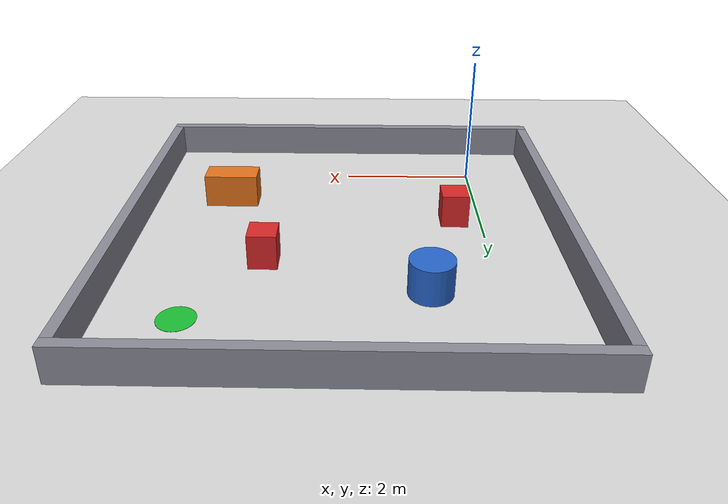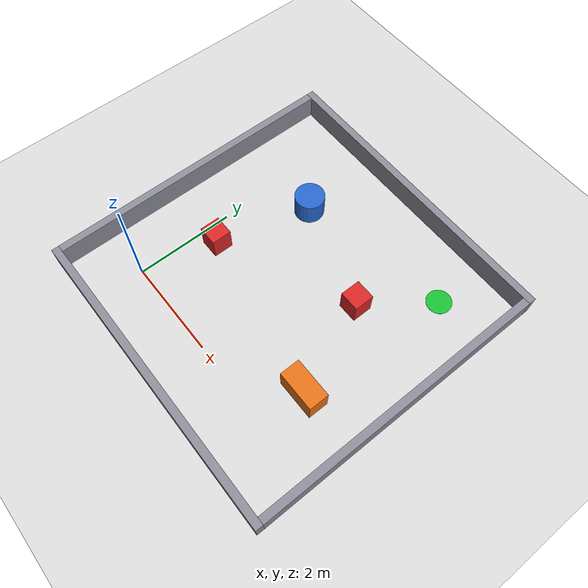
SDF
<?xml version="1.0"?>
<sdf version="1.6">
  <world name="senaryo3">

    <physics type="ode">
      <real_time_update_rate>1000.0</real_time_update_rate>
      <max_step_size>0.001</max_step_size>
      <real_time_factor>1</real_time_factor>
      <ode>
        <solver>
          <type>quick</type>
          <iters>150</iters>
          <precon_iters>0</precon_iters>
          <sor>1.400000</sor>
          <use_dynamic_moi_rescaling>1</use_dynamic_moi_rescaling>
        </solver>
        <constraints>
          <cfm>0.00001</cfm>
          <erp>0.2</erp>
          <contact_max_correcting_vel>2000.000000</contact_max_correcting_vel>
          <contact_surface_layer>0.01000</contact_surface_layer>
        </constraints>
      </ode>
    </physics>

    <scene>
      <ambient>0.4 0.4 0.4 1</ambient>
      <background>0.7 0.7 0.7 1</background>
      <shadows>false</shadows>
    </scene>

    <gui fullscreen="0">
      <camera name="user_camera">
        <pose>2.0 -2.6 6.2 0 0.9 1.5708</pose>
        <view_controller>orbit</view_controller>
        <projection_type>perspective</projection_type>
      </camera>
    </gui>

    <light name="sun" type="directional">
      <cast_shadows>false</cast_shadows>
      <pose>0 0 10 0 0 0</pose>
      <diffuse>0.8 0.8 0.8 1</diffuse>
      <specular>0.2 0.2 0.2 1</specular>
      <attenuation>
        <range>1000</range>
        <constant>0.9</constant>
        <linear>0.01</linear>
        <quadratic>0.001</quadratic>
      </attenuation>
      <direction>-0.5 0.1 -0.9</direction>
    </light>

    <model name="ground_plane">
      <static>true</static>
      <link name="link">
        <collision name="collision">
          <geometry>
            <plane><normal>0 0 1</normal><size>100 100</size></plane>
          </geometry>
          <surface>
            <friction><ode><mu>100</mu><mu2>50</mu2></ode></friction>
          </surface>
        </collision>
        <visual name="visual">
          <cast_shadows>false</cast_shadows>
          <geometry>
            <plane><normal>0 0 1</normal><size>100 100</size></plane>
          </geometry>
          <material>
            <ambient>0.85 0.85 0.85 1</ambient>
            <diffuse>0.85 0.85 0.85 1</diffuse>
          </material>
        </visual>
      </link>
    </model>

    <!-- Oda: iç yüzeyler x = -1, x = 5, y = -1, y = 5. Kalınlık 0.15 m, yükseklik 0.5 m. -->
    <model name="oda">
      <static>true</static>
      <link name="duvarlar">
        <collision name="guney_c">
          <pose>2.0 -1.075 0.25 0 0 0</pose>
          <geometry><box><size>6.3 0.15 0.5</size></box></geometry>
        </collision>
        <visual name="guney_v">
          <pose>2.0 -1.075 0.25 0 0 0</pose>
          <geometry><box><size>6.3 0.15 0.5</size></box></geometry>
          <material>
            <ambient>0.55 0.55 0.6 1</ambient>
            <diffuse>0.55 0.55 0.6 1</diffuse>
          </material>
        </visual>
        <collision name="kuzey_c">
          <pose>2.0 5.075 0.25 0 0 0</pose>
          <geometry><box><size>6.3 0.15 0.5</size></box></geometry>
        </collision>
        <visual name="kuzey_v">
          <pose>2.0 5.075 0.25 0 0 0</pose>
          <geometry><box><size>6.3 0.15 0.5</size></box></geometry>
          <material>
            <ambient>0.55 0.55 0.6 1</ambient>
            <diffuse>0.55 0.55 0.6 1</diffuse>
          </material>
        </visual>
        <collision name="bati_c">
          <pose>-1.075 2.0 0.25 0 0 0</pose>
          <geometry><box><size>0.15 6.0 0.5</size></box></geometry>
        </collision>
        <visual name="bati_v">
          <pose>-1.075 2.0 0.25 0 0 0</pose>
          <geometry><box><size>0.15 6.0 0.5</size></box></geometry>
          <material>
            <ambient>0.55 0.55 0.6 1</ambient>
            <diffuse>0.55 0.55 0.6 1</diffuse>
          </material>
        </visual>
        <collision name="dogu_c">
          <pose>5.075 2.0 0.25 0 0 0</pose>
          <geometry><box><size>0.15 6.0 0.5</size></box></geometry>
        </collision>
        <visual name="dogu_v">
          <pose>5.075 2.0 0.25 0 0 0</pose>
          <geometry><box><size>0.15 6.0 0.5</size></box></geometry>
          <material>
            <ambient>0.55 0.55 0.6 1</ambient>
            <diffuse>0.55 0.55 0.6 1</diffuse>
          </material>
        </visual>
      </link>
    </model>

    <!-- Statik engeller (az): rotanın yanlarında. -->
    <model name="kutu_1">
      <static>true</static>
      <pose>3.8 0.9 0.25 0 0 0</pose>
      <link name="link">
        <collision name="collision">
          <geometry><box><size>0.8 0.4 0.5</size></box></geometry>
        </collision>
        <visual name="visual">
          <geometry><box><size>0.8 0.4 0.5</size></box></geometry>
          <material>
            <ambient>0.9 0.45 0.1 1</ambient>
            <diffuse>0.9 0.45 0.1 1</diffuse>
          </material>
        </visual>
      </link>
    </model>

    <model name="silindir_1">
      <static>true</static>
      <pose>0.9 3.4 0.25 0 0 0</pose>
      <link name="link">
        <collision name="collision">
          <geometry><cylinder><radius>0.3</radius><length>0.5</length></cylinder></geometry>
        </collision>
        <visual name="visual">
          <geometry><cylinder><radius>0.3</radius><length>0.5</length></cylinder></geometry>
          <material>
            <ambient>0.15 0.4 0.8 1</ambient>
            <diffuse>0.15 0.4 0.8 1</diffuse>
          </material>
        </visual>
      </link>
    </model>

    <model name="engel1">
      <pose>0.4 1.5 0.25 0 0 0</pose>
      <link name="link">
        <inertial>
          <mass>5.0</mass>
          <inertia>
            <ixx>0.1708</ixx><iyy>0.1708</iyy><izz>0.1333</izz>
            <ixy>0</ixy><ixz>0</ixz><iyz>0</iyz>
          </inertia>
        </inertial>
        <collision name="collision">
          <geometry><box><size>0.4 0.4 0.5</size></box></geometry>
          <surface>
            <friction><ode><mu>0</mu><mu2>0</mu2></ode></friction>
          </surface>
        </collision>
        <visual name="visual">
          <geometry><box><size>0.4 0.4 0.5</size></box></geometry>
          <material>
            <ambient>0.85 0.15 0.15 1</ambient>
            <diffuse>0.85 0.15 0.15 1</diffuse>
          </material>
        </visual>
      </link>
      <plugin name="engel1_move" filename="libgazebo_ros_planar_move.so">
        <ros><namespace>/engel1</namespace></ros>
        <update_rate>50</update_rate>
        <publish_rate>10</publish_rate>
        <publish_odom>true</publish_odom>
        <publish_odom_tf>false</publish_odom_tf>
        <odometry_frame>world</odometry_frame>
        <robot_base_frame>engel1</robot_base_frame>
      </plugin>
    </model>

    <model name="engel2">
      <pose>3.1 2.7 0.25 0 0 1.5708</pose>
      <link name="link">
        <inertial>
          <mass>5.0</mass>
          <inertia>
            <ixx>0.1708</ixx><iyy>0.1708</iyy><izz>0.1333</izz>
            <ixy>0</ixy><ixz>0</ixz><iyz>0</iyz>
          </inertia>
        </inertial>
        <collision name="collision">
          <geometry><box><size>0.4 0.4 0.5</size></box></geometry>
          <surface>
            <friction><ode><mu>0</mu><mu2>0</mu2></ode></friction>
          </surface>
        </collision>
        <visual name="visual">
          <geometry><box><size>0.4 0.4 0.5</size></box></geometry>
          <material>
            <ambient>0.85 0.15 0.15 1</ambient>
            <diffuse>0.85 0.15 0.15 1</diffuse>
          </material>
        </visual>
      </link>
      <plugin name="engel2_move" filename="libgazebo_ros_planar_move.so">
        <ros><namespace>/engel2</namespace></ros>
        <update_rate>50</update_rate>
        <publish_rate>10</publish_rate>
        <publish_odom>true</publish_odom>
        <publish_odom_tf>false</publish_odom_tf>
        <odometry_frame>world</odometry_frame>
        <robot_base_frame>engel2</robot_base_frame>
      </plugin>
    </model>

    <!-- Hedef bölgesi: yalnızca görsel (collision yok → LiDAR görmez, robot üstünden geçer). -->
    <model name="hedef">
      <static>true</static>
      <pose>4.0 4.0 0.002 0 0 0</pose>
      <link name="link">
        <visual name="visual">
          <geometry><cylinder><radius>0.25</radius><length>0.004</length></cylinder></geometry>
          <material>
            <ambient>0.1 0.75 0.2 1</ambient>
            <diffuse>0.1 0.75 0.2 1</diffuse>
          </material>
        </visual>
      </link>
    </model>

  </world>
</sdf>
